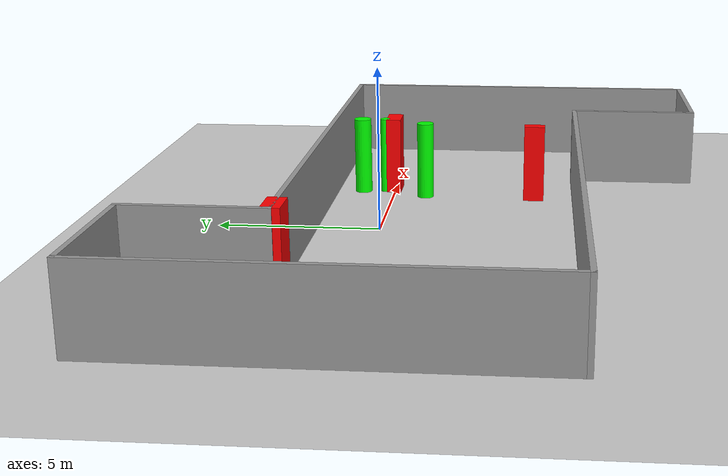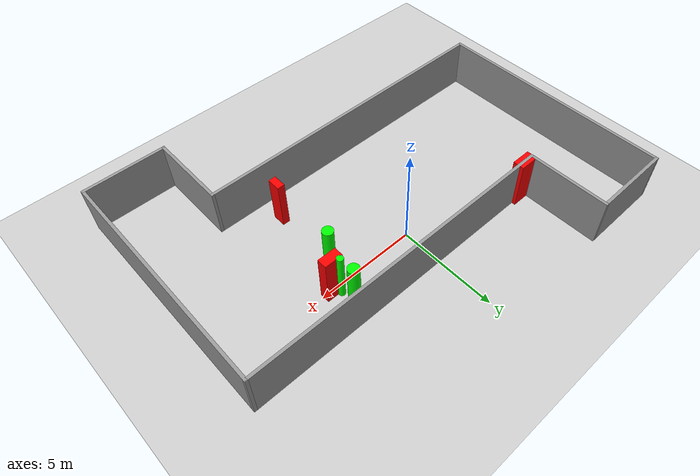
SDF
<sdf version="1.7">
 <world name="default">
  <light name="sun" type="directional">
   <pose>0 0 10 0 -0 0</pose>
   <diffuse>0.8 0.8 0.8 1</diffuse>
   <specular>0.2 0.2 0.2 1</specular>
   <attenuation>
    <range>1000</range>
    <constant>0.9</constant>
    <linear>0.01</linear>
    <quadratic>0.001</quadratic>
   </attenuation>
   <direction>-0.5 0.1 -0.9</direction>
   <spot><inner_angle>0</inner_angle><outer_angle>0</outer_angle><falloff>0</falloff></spot>
  </light>
  <model name="ground_plane">
   <static>1</static>
   <link name="link">
    <collision name="collision">
     <geometry><plane><normal>0 0 1</normal><size>100 100</size></plane></geometry>
     <surface>
      <contact><collide_bitmask>65535</collide_bitmask></contact>
      <friction><ode><mu>100</mu><mu2>50</mu2></ode></friction>
     </surface>
    </collision>
    <visual name="visual">
     <cast_shadows>0</cast_shadows>
     <geometry><plane><normal>0 0 1</normal><size>100 100</size></plane></geometry>
     <material>
      <script><uri>file://media/materials/scripts/gazebo.material</uri><name>Gazebo/Grey</name></script>
     </material>
    </visual>
   </link>
  </model>
  <gravity>0 0 -9.8</gravity>
  <magnetic_field>6e-06 2.3e-05 -4.2e-05</magnetic_field>
  <atmosphere type="adiabatic"/>
  <physics type="ode">
   <max_step_size>0.001</max_step_size>
   <real_time_factor>1</real_time_factor>
   <real_time_update_rate>1000</real_time_update_rate>
  </physics>
  <scene><ambient>0.4 0.4 0.4 1</ambient><background>0.7 0.7 0.7 1</background><shadows>1</shadows></scene>
  <spherical_coordinates>
   <surface_model>EARTH_WGS84</surface_model>
   <latitude_deg>0</latitude_deg>
   <longitude_deg>0</longitude_deg>
   <elevation>0</elevation>
   <heading_deg>0</heading_deg>
  </spherical_coordinates>
  <model name="my_base_walls">
   <link name="Wall_13">
    <collision name="Wall_13_Collision">
     <geometry><box><size>12.15 0.15 2.5</size></box></geometry>
     <pose>0 0 1.25 0 -0 0</pose>
    </collision>
    <visual name="Wall_13_Visual">
     <pose>0 0 1.25 0 -0 0</pose>
     <geometry><box><size>12.15 0.15 2.5</size></box></geometry>
     <material>
      <script><uri>file://media/materials/scripts/gazebo.material</uri><name>Gazebo/Grey</name></script>
      <ambient>1 1 1 1</ambient>
     </material>
     <meta><layer>0</layer></meta>
    </visual>
    <pose>10 -2 0 0 -0 1.5708</pose>
   </link>
   <link name="Wall_15">
    <collision name="Wall_15_Collision">
     <geometry><box><size>16.15 0.15 2.5</size></box></geometry>
     <pose>0 0 1.25 0 -0 0</pose>
    </collision>
    <visual name="Wall_15_Visual">
     <pose>0 0 1.25 0 -0 0</pose>
     <geometry><box><size>16.15 0.15 2.5</size></box></geometry>
     <material>
      <script><uri>file://media/materials/scripts/gazebo.material</uri><name>Gazebo/Grey</name></script>
      <ambient>1 1 1 1</ambient>
     </material>
     <meta><layer>0</layer></meta>
    </visual>
    <pose>2 4 0 0 -0 3.14159</pose>
   </link>
   <link name="Wall_17">
    <collision name="Wall_17_Collision">
     <geometry><box><size>4.15 0.15 2.5</size></box></geometry>
     <pose>0 0 1.25 0 -0 0</pose>
    </collision>
    <visual name="Wall_17_Visual">
     <pose>0 0 1.25 0 -0 0</pose>
     <geometry><box><size>4.15 0.15 2.5</size></box></geometry>
     <material>
      <script><uri>file://media/materials/scripts/gazebo.material</uri><name>Gazebo/Grey</name></script>
      <ambient>1 1 1 1</ambient>
     </material>
     <meta><layer>0</layer></meta>
    </visual>
    <pose>6 -6 0 0 -0 -1.5708</pose>
   </link>
   <link name="Wall_19">
    <collision name="Wall_19_Collision">
     <geometry><box><size>12.15 0.15 2.5</size></box></geometry>
     <pose>0 0 1.25 0 -0 0</pose>
    </collision>
    <visual name="Wall_19_Visual">
     <pose>0 0 1.25 0 -0 0</pose>
     <geometry><box><size>12.15 0.15 2.5</size></box></geometry>
     <material>
      <script><uri>file://media/materials/scripts/gazebo.material</uri><name>Gazebo/Grey</name></script>
      <ambient>1 1 1 1</ambient>
     </material>
     <meta><layer>0</layer></meta>
    </visual>
    <pose>-10 2 0 0 -0 1.5708</pose>
   </link>
   <link name="Wall_21">
    <collision name="Wall_21_Collision">
     <geometry><box><size>4.15 0.15 2.5</size></box></geometry>
     <pose>0 0 1.25 0 -0 0</pose>
    </collision>
    <visual name="Wall_21_Visual">
     <pose>0 0 1.25 0 -0 0</pose>
     <geometry><box><size>4.15 0.15 2.5</size></box></geometry>
     <material>
      <script><uri>file://media/materials/scripts/gazebo.material</uri><name>Gazebo/Grey</name></script>
      <ambient>1 1 1 1</ambient>
     </material>
     <meta><layer>0</layer></meta>
    </visual>
    <pose>-8 8 0 0 -0 0</pose>
   </link>
   <link name="Wall_23">
    <collision name="Wall_23_Collision">
     <geometry><box><size>4.15 0.15 2.5</size></box></geometry>
     <pose>0 0 1.25 0 -0 0</pose>
    </collision>
    <visual name="Wall_23_Visual">
     <pose>0 0 1.25 0 -0 0</pose>
     <geometry><box><size>4.15 0.15 2.5</size></box></geometry>
     <material>
      <script><uri>file://media/materials/scripts/gazebo.material</uri><name>Gazebo/Grey</name></script>
      <ambient>1 1 1 1</ambient>
     </material>
     <meta><layer>0</layer></meta>
    </visual>
    <pose>-6 6 0 0 -0 -1.5708</pose>
   </link>
   <link name="Wall_25">
    <collision name="Wall_25_Collision">
     <geometry><box><size>4.15 0.15 2.5</size></box></geometry>
     <pose>0 0 1.25 0 -0 0</pose>
    </collision>
    <visual name="Wall_25_Visual">
     <pose>0 0 1.25 0 -0 0</pose>
     <geometry><box><size>4.15 0.15 2.5</size></box></geometry>
     <material>
      <script><uri>file://media/materials/scripts/gazebo.material</uri><name>Gazebo/Grey</name></script>
      <ambient>1 1 1 1</ambient>
     </material>
     <meta><layer>0</layer></meta>
    </visual>
    <pose>8 -8 0 0 -0 0</pose>
   </link>
   <link name="Wall_9">
    <collision name="Wall_9_Collision">
     <geometry><box><size>16.15 0.15 2.5</size></box></geometry>
     <pose>0 0 1.25 0 -0 0</pose>
    </collision>
    <visual name="Wall_9_Visual">
     <pose>0 0 1.25 0 -0 0</pose>
     <geometry><box><size>16.15 0.15 2.5</size></box></geometry>
     <material>
      <script><uri>file://media/materials/scripts/gazebo.material</uri><name>Gazebo/Grey</name></script>
      <ambient>1 1 1 1</ambient>
     </material>
     <meta><layer>0</layer></meta>
    </visual>
    <pose>-2 -4 0 0 -0 3.14159</pose>
   </link>
   <static>1</static>
   <pose>-0 -2 0 0 -0 0</pose>
  </model>
  <model name="cylinder1">
   <static>1</static>
   <link name="link">
    <inertial>
     <mass>1</mass>
     <inertia><ixx>0.5</ixx><ixy>0</ixy><ixz>0</ixz><iyy>0.5</iyy><iyz>0</iyz><izz>1</izz></inertia>
    </inertial>
    <collision name="collision">
     <geometry><cylinder><radius>0.16238045553348265</radius><length>2.5</length></cylinder></geometry>
    </collision>
    <visual name="visual">
     <geometry><cylinder><radius>0.16238045553348265</radius><length>2.5</length></cylinder></geometry>
     <material>
      <ambient>0 1 0 1</ambient>
      <diffuse>0 1 0 1</diffuse>
      <specular>0.1 0.1 0.1 1</specular>
      <emissive>0 0 0 0</emissive>
     </material>
    </visual>
   </link>
   <pose>4.201671494859065 0.3457923792773361 1.25 0 0 0</pose>
  </model>
  <model name="cylinder2">
   <static>1</static>
   <link name="link">
    <inertial>
     <mass>1</mass>
     <inertia><ixx>0.5</ixx><ixy>0</ixy><ixz>0</ixz><iyy>0.5</iyy><iyz>0</iyz><izz>1</izz></inertia>
    </inertial>
    <collision name="collision">
     <geometry><cylinder><radius>0.2789186002507742</radius><length>2.5</length></cylinder></geometry>
    </collision>
    <visual name="visual">
     <geometry><cylinder><radius>0.2789186002507742</radius><length>2.5</length></cylinder></geometry>
     <material>
      <ambient>0 1 0 1</ambient>
      <diffuse>0 1 0 1</diffuse>
      <specular>0.1 0.1 0.1 1</specular>
      <emissive>0 0 0 0</emissive>
     </material>
    </visual>
   </link>
   <pose>4.14086229106363 1.089847954055295 1.25 0 0 0</pose>
  </model>
  <model name="cylinder3">
   <static>1</static>
   <link name="link">
    <inertial>
     <mass>1</mass>
     <inertia><ixx>0.5</ixx><ixy>0</ixy><ixz>0</ixz><iyy>0.5</iyy><iyz>0</iyz><izz>1</izz></inertia>
    </inertial>
    <collision name="collision">
     <geometry><cylinder><radius>0.26917838489744694</radius><length>2.5</length></cylinder></geometry>
    </collision>
    <visual name="visual">
     <geometry><cylinder><radius>0.26917838489744694</radius><length>2.5</length></cylinder></geometry>
     <material>
      <ambient>0 1 0 1</ambient>
      <diffuse>0 1 0 1</diffuse>
      <specular>0.1 0.1 0.1 1</specular>
      <emissive>0 0 0 0</emissive>
     </material>
    </visual>
   </link>
   <pose>3.6519445841670866 -1.0556260359101408 1.25 0 0 0</pose>
  </model>
  <model name="box1">
   <static>1</static>
   <link name="link">
    <inertial>
     <mass>1</mass>
     <inertia><ixx>0.083</ixx><ixy>0</ixy><ixz>0</ixz><iyy>0.083</iyy><iyz>0</iyz><izz>0.083</izz></inertia>
    </inertial>
    <collision name="collision">
     <geometry><box><size>0.9095154119944773 0.48032692115669723 2.5</size></box></geometry>
    </collision>
    <visual name="visual">
     <geometry><box><size>0.9095154119944773 0.48032692115669723 2.5</size></box></geometry>
     <material>
      <ambient>1 0 0 1</ambient>
      <diffuse>1 0 0 1</diffuse>
      <specular>0.1 0.1 0.1 1</specular>
      <emissive>0 0 0 0</emissive>
     </material>
    </visual>
    <sensor name="my_contact" type="contact">
     <contact><collision>box_collision</collision><topic>__default_topic__</topic></contact>
    </sensor>
   </link>
   <pose>4.466880559535648 0.05575925003235849 1.25 0 0 0</pose>
  </model>
  <model name="box2">
   <static>1</static>
   <link name="link">
    <inertial>
     <mass>1</mass>
     <inertia><ixx>0.083</ixx><ixy>0</ixy><ixz>0</ixz><iyy>0.083</iyy><iyz>0</iyz><izz>0.083</izz></inertia>
    </inertial>
    <collision name="collision">
     <geometry><box><size>0.9937440467100758 0.5463016262478901 2.5</size></box></geometry>
    </collision>
    <visual name="visual">
     <geometry><box><size>0.9937440467100758 0.5463016262478901 2.5</size></box></geometry>
     <material>
      <ambient>1 0 0 1</ambient>
      <diffuse>1 0 0 1</diffuse>
      <specular>0.1 0.1 0.1 1</specular>
      <emissive>0 0 0 0</emissive>
     </material>
    </visual>
    <sensor name="my_contact" type="contact">
     <contact><collision>box_collision</collision><topic>__default_topic__</topic></contact>
    </sensor>
   </link>
   <pose>-5.557440554263865 1.9792151263030684 1.25 0 0 0</pose>
  </model>
  <model name="box3">
   <static>1</static>
   <link name="link">
    <inertial>
     <mass>1</mass>
     <inertia><ixx>0.083</ixx><ixy>0</ixy><ixz>0</ixz><iyy>0.083</iyy><iyz>0</iyz><izz>0.083</izz></inertia>
    </inertial>
    <collision name="collision">
     <geometry><box><size>0.36286478993704246 0.6619066832902276 2.5</size></box></geometry>
    </collision>
    <visual name="visual">
     <geometry><box><size>0.36286478993704246 0.6619066832902276 2.5</size></box></geometry>
     <material>
      <ambient>1 0 0 1</ambient>
      <diffuse>1 0 0 1</diffuse>
      <specular>0.1 0.1 0.1 1</specular>
      <emissive>0 0 0 0</emissive>
     </material>
    </visual>
    <sensor name="my_contact" type="contact">
     <contact><collision>box_collision</collision><topic>__default_topic__</topic></contact>
    </sensor>
   </link>
   <pose>3.543781166106676 -4.651405301928262 1.25 0 0 0</pose>
  </model>
 </world>
</sdf>
